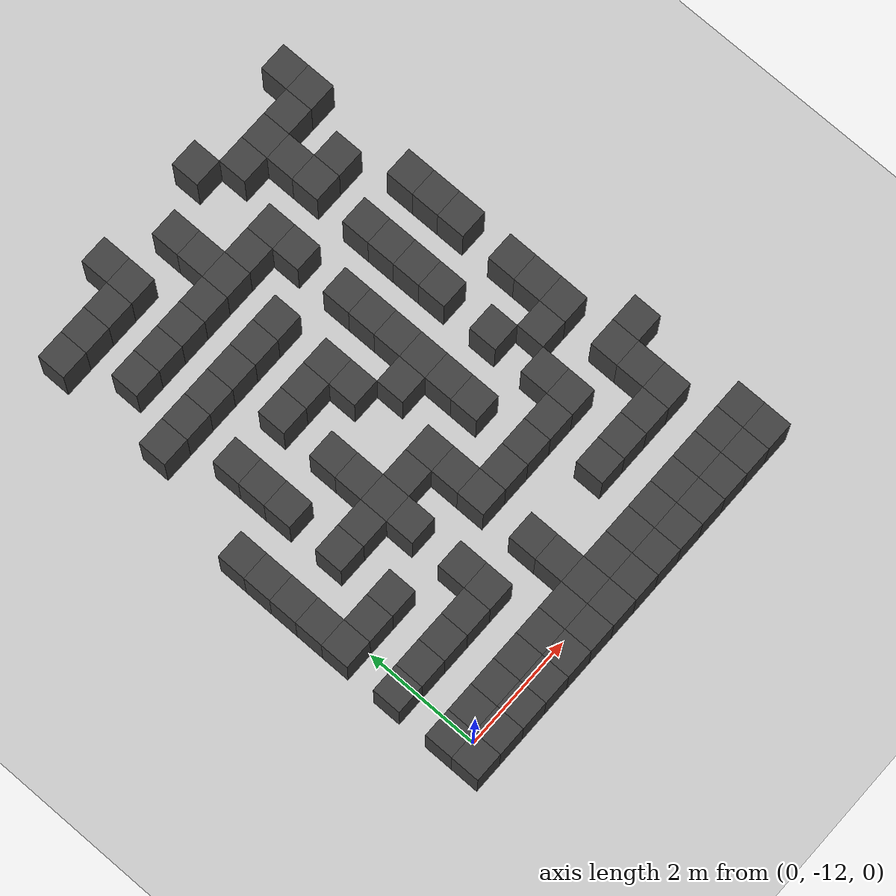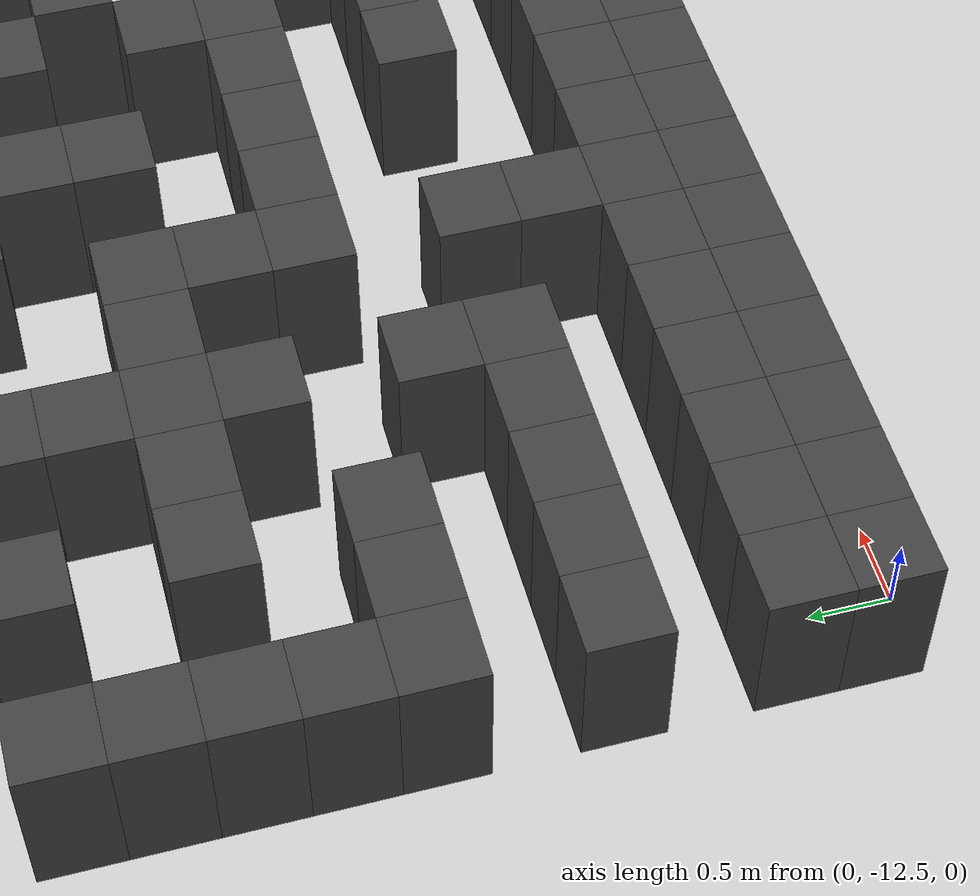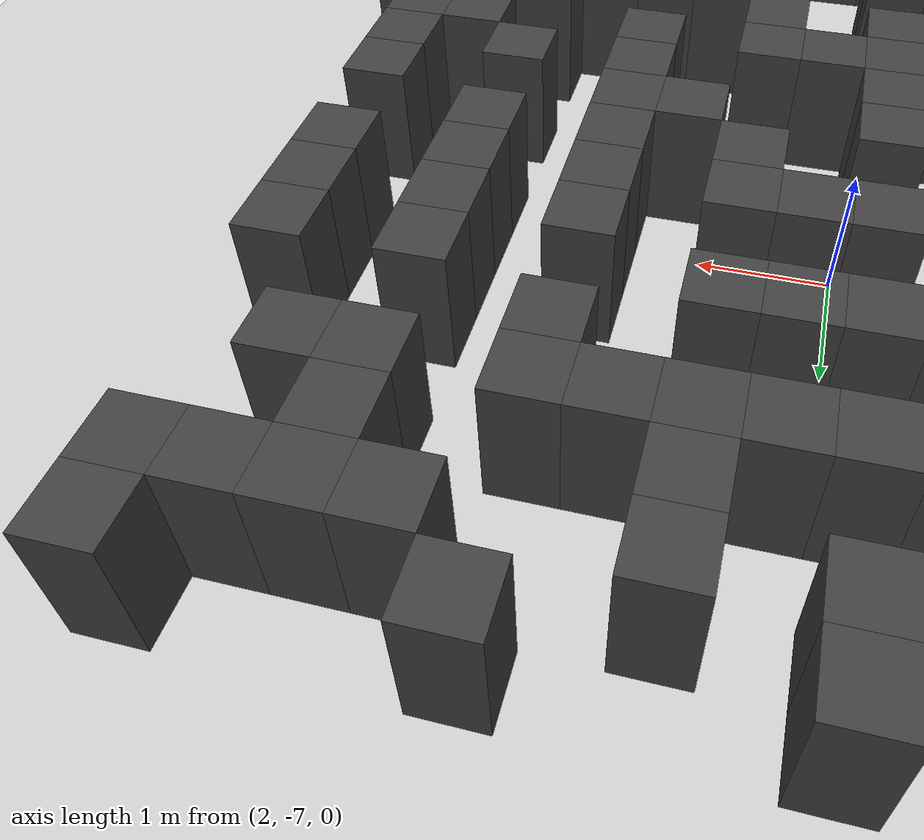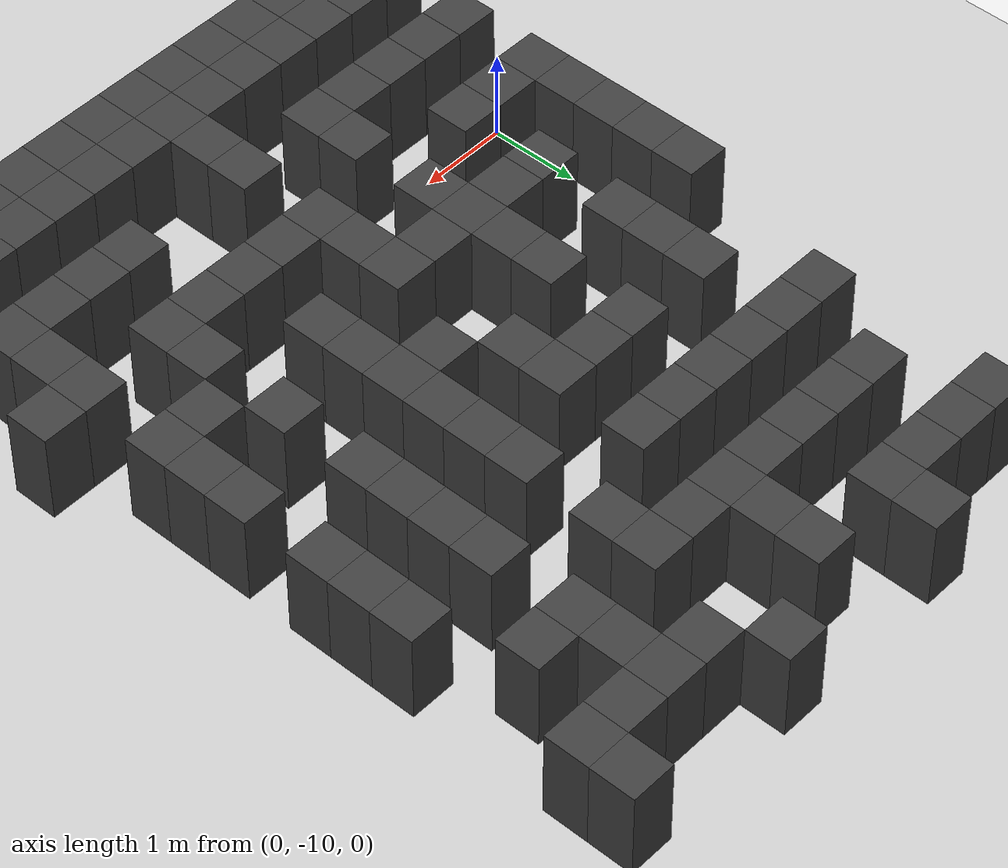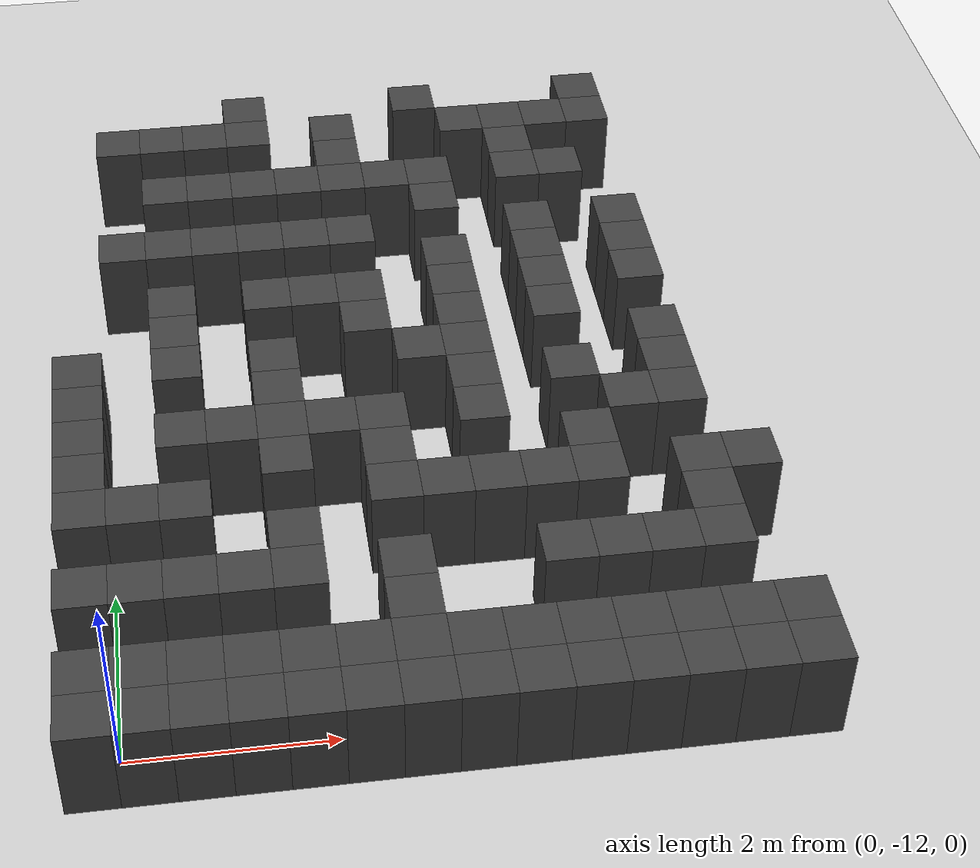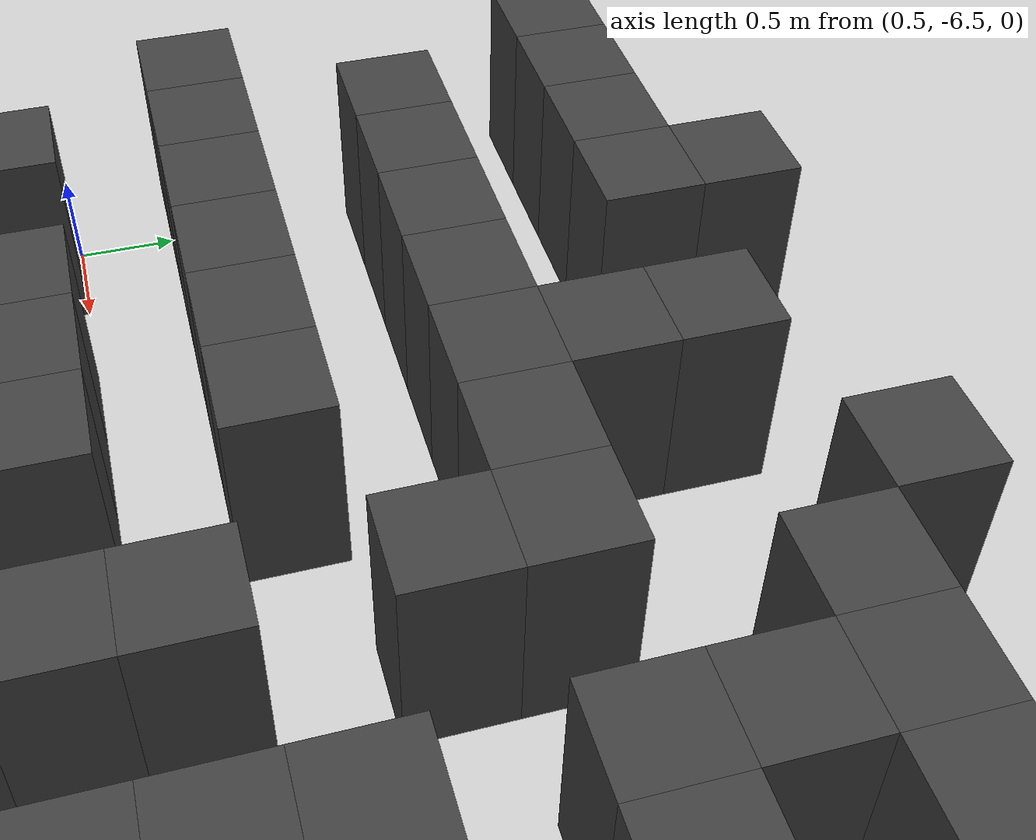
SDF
<sdf version="1.7">
 <world name="map_15497">
  <model name="ground_plane">
   <static>true</static>
   <link name="link">
    <collision name="collision">
     <geometry><plane><normal>0 0 1</normal><size>200 200</size></plane></geometry>
    </collision>
    <visual name="visual">
     <geometry><plane><normal>0 0 1</normal><size>200 200</size></plane></geometry>
     <material><ambient>0.8 0.8 0.8 1</ambient><diffuse>0.8 0.8 0.8 1</diffuse></material>
    </visual>
   </link>
  </model>
  <model name="maze_environment">
   <static>true</static>
   <link name="wall_742">
    <pose>1.750 -3.250 0.500 0 0 0</pose>
    <collision name="col"><geometry><box><size>0.5 0.5 1.0</size></box></geometry></collision>
    <visual name="vis">
     <geometry><box><size>0.5 0.5 1.0</size></box></geometry>
     <material><ambient>0.15 0.15 0.15 1</ambient><diffuse>0.25 0.25 0.25 1</diffuse></material>
    </visual>
   </link>
   <link name="wall_743">
    <pose>3.750 -3.250 0.500 0 0 0</pose>
    <collision name="col"><geometry><box><size>0.5 0.5 1.0</size></box></geometry></collision>
    <visual name="vis">
     <geometry><box><size>0.5 0.5 1.0</size></box></geometry>
     <material><ambient>0.15 0.15 0.15 1</ambient><diffuse>0.25 0.25 0.25 1</diffuse></material>
    </visual>
   </link>
   <link name="wall_744">
    <pose>5.750 -3.250 0.500 0 0 0</pose>
    <collision name="col"><geometry><box><size>0.5 0.5 1.0</size></box></geometry></collision>
    <visual name="vis">
     <geometry><box><size>0.5 0.5 1.0</size></box></geometry>
     <material><ambient>0.15 0.15 0.15 1</ambient><diffuse>0.25 0.25 0.25 1</diffuse></material>
    </visual>
   </link>
   <link name="wall_765">
    <pose>0.250 -3.750 0.500 0 0 0</pose>
    <collision name="col"><geometry><box><size>0.5 0.5 1.0</size></box></geometry></collision>
    <visual name="vis">
     <geometry><box><size>0.5 0.5 1.0</size></box></geometry>
     <material><ambient>0.15 0.15 0.15 1</ambient><diffuse>0.25 0.25 0.25 1</diffuse></material>
    </visual>
   </link>
   <link name="wall_766">
    <pose>0.750 -3.750 0.500 0 0 0</pose>
    <collision name="col"><geometry><box><size>0.5 0.5 1.0</size></box></geometry></collision>
    <visual name="vis">
     <geometry><box><size>0.5 0.5 1.0</size></box></geometry>
     <material><ambient>0.15 0.15 0.15 1</ambient><diffuse>0.25 0.25 0.25 1</diffuse></material>
    </visual>
   </link>
   <link name="wall_767">
    <pose>1.250 -3.750 0.500 0 0 0</pose>
    <collision name="col"><geometry><box><size>0.5 0.5 1.0</size></box></geometry></collision>
    <visual name="vis">
     <geometry><box><size>0.5 0.5 1.0</size></box></geometry>
     <material><ambient>0.15 0.15 0.15 1</ambient><diffuse>0.25 0.25 0.25 1</diffuse></material>
    </visual>
   </link>
   <link name="wall_768">
    <pose>1.750 -3.750 0.500 0 0 0</pose>
    <collision name="col"><geometry><box><size>0.5 0.5 1.0</size></box></geometry></collision>
    <visual name="vis">
     <geometry><box><size>0.5 0.5 1.0</size></box></geometry>
     <material><ambient>0.15 0.15 0.15 1</ambient><diffuse>0.25 0.25 0.25 1</diffuse></material>
    </visual>
   </link>
   <link name="wall_769">
    <pose>2.750 -3.750 0.500 0 0 0</pose>
    <collision name="col"><geometry><box><size>0.5 0.5 1.0</size></box></geometry></collision>
    <visual name="vis">
     <geometry><box><size>0.5 0.5 1.0</size></box></geometry>
     <material><ambient>0.15 0.15 0.15 1</ambient><diffuse>0.25 0.25 0.25 1</diffuse></material>
    </visual>
   </link>
   <link name="wall_770">
    <pose>4.250 -3.750 0.500 0 0 0</pose>
    <collision name="col"><geometry><box><size>0.5 0.5 1.0</size></box></geometry></collision>
    <visual name="vis">
     <geometry><box><size>0.5 0.5 1.0</size></box></geometry>
     <material><ambient>0.15 0.15 0.15 1</ambient><diffuse>0.25 0.25 0.25 1</diffuse></material>
    </visual>
   </link>
   <link name="wall_771">
    <pose>4.750 -3.750 0.500 0 0 0</pose>
    <collision name="col"><geometry><box><size>0.5 0.5 1.0</size></box></geometry></collision>
    <visual name="vis">
     <geometry><box><size>0.5 0.5 1.0</size></box></geometry>
     <material><ambient>0.15 0.15 0.15 1</ambient><diffuse>0.25 0.25 0.25 1</diffuse></material>
    </visual>
   </link>
   <link name="wall_772">
    <pose>5.250 -3.750 0.500 0 0 0</pose>
    <collision name="col"><geometry><box><size>0.5 0.5 1.0</size></box></geometry></collision>
    <visual name="vis">
     <geometry><box><size>0.5 0.5 1.0</size></box></geometry>
     <material><ambient>0.15 0.15 0.15 1</ambient><diffuse>0.25 0.25 0.25 1</diffuse></material>
    </visual>
   </link>
   <link name="wall_773">
    <pose>5.750 -3.750 0.500 0 0 0</pose>
    <collision name="col"><geometry><box><size>0.5 0.5 1.0</size></box></geometry></collision>
    <visual name="vis">
     <geometry><box><size>0.5 0.5 1.0</size></box></geometry>
     <material><ambient>0.15 0.15 0.15 1</ambient><diffuse>0.25 0.25 0.25 1</diffuse></material>
    </visual>
   </link>
   <link name="wall_789">
    <pose>2.750 -4.250 0.500 0 0 0</pose>
    <collision name="col"><geometry><box><size>0.5 0.5 1.0</size></box></geometry></collision>
    <visual name="vis">
     <geometry><box><size>0.5 0.5 1.0</size></box></geometry>
     <material><ambient>0.15 0.15 0.15 1</ambient><diffuse>0.25 0.25 0.25 1</diffuse></material>
    </visual>
   </link>
   <link name="wall_790">
    <pose>4.750 -4.250 0.500 0 0 0</pose>
    <collision name="col"><geometry><box><size>0.5 0.5 1.0</size></box></geometry></collision>
    <visual name="vis">
     <geometry><box><size>0.5 0.5 1.0</size></box></geometry>
     <material><ambient>0.15 0.15 0.15 1</ambient><diffuse>0.25 0.25 0.25 1</diffuse></material>
    </visual>
   </link>
   <link name="wall_810">
    <pose>0.750 -4.750 0.500 0 0 0</pose>
    <collision name="col"><geometry><box><size>0.5 0.5 1.0</size></box></geometry></collision>
    <visual name="vis">
     <geometry><box><size>0.5 0.5 1.0</size></box></geometry>
     <material><ambient>0.15 0.15 0.15 1</ambient><diffuse>0.25 0.25 0.25 1</diffuse></material>
    </visual>
   </link>
   <link name="wall_811">
    <pose>1.250 -4.750 0.500 0 0 0</pose>
    <collision name="col"><geometry><box><size>0.5 0.5 1.0</size></box></geometry></collision>
    <visual name="vis">
     <geometry><box><size>0.5 0.5 1.0</size></box></geometry>
     <material><ambient>0.15 0.15 0.15 1</ambient><diffuse>0.25 0.25 0.25 1</diffuse></material>
    </visual>
   </link>
   <link name="wall_812">
    <pose>1.750 -4.750 0.500 0 0 0</pose>
    <collision name="col"><geometry><box><size>0.5 0.5 1.0</size></box></geometry></collision>
    <visual name="vis">
     <geometry><box><size>0.5 0.5 1.0</size></box></geometry>
     <material><ambient>0.15 0.15 0.15 1</ambient><diffuse>0.25 0.25 0.25 1</diffuse></material>
    </visual>
   </link>
   <link name="wall_813">
    <pose>2.250 -4.750 0.500 0 0 0</pose>
    <collision name="col"><geometry><box><size>0.5 0.5 1.0</size></box></geometry></collision>
    <visual name="vis">
     <geometry><box><size>0.5 0.5 1.0</size></box></geometry>
     <material><ambient>0.15 0.15 0.15 1</ambient><diffuse>0.25 0.25 0.25 1</diffuse></material>
    </visual>
   </link>
   <link name="wall_814">
    <pose>2.750 -4.750 0.500 0 0 0</pose>
    <collision name="col"><geometry><box><size>0.5 0.5 1.0</size></box></geometry></collision>
    <visual name="vis">
     <geometry><box><size>0.5 0.5 1.0</size></box></geometry>
     <material><ambient>0.15 0.15 0.15 1</ambient><diffuse>0.25 0.25 0.25 1</diffuse></material>
    </visual>
   </link>
   <link name="wall_815">
    <pose>3.250 -4.750 0.500 0 0 0</pose>
    <collision name="col"><geometry><box><size>0.5 0.5 1.0</size></box></geometry></collision>
    <visual name="vis">
     <geometry><box><size>0.5 0.5 1.0</size></box></geometry>
     <material><ambient>0.15 0.15 0.15 1</ambient><diffuse>0.25 0.25 0.25 1</diffuse></material>
    </visual>
   </link>
   <link name="wall_816">
    <pose>3.750 -4.750 0.500 0 0 0</pose>
    <collision name="col"><geometry><box><size>0.5 0.5 1.0</size></box></geometry></collision>
    <visual name="vis">
     <geometry><box><size>0.5 0.5 1.0</size></box></geometry>
     <material><ambient>0.15 0.15 0.15 1</ambient><diffuse>0.25 0.25 0.25 1</diffuse></material>
    </visual>
   </link>
   <link name="wall_817">
    <pose>4.750 -4.750 0.500 0 0 0</pose>
    <collision name="col"><geometry><box><size>0.5 0.5 1.0</size></box></geometry></collision>
    <visual name="vis">
     <geometry><box><size>0.5 0.5 1.0</size></box></geometry>
     <material><ambient>0.15 0.15 0.15 1</ambient><diffuse>0.25 0.25 0.25 1</diffuse></material>
    </visual>
   </link>
   <link name="wall_818">
    <pose>5.250 -4.750 0.500 0 0 0</pose>
    <collision name="col"><geometry><box><size>0.5 0.5 1.0</size></box></geometry></collision>
    <visual name="vis">
     <geometry><box><size>0.5 0.5 1.0</size></box></geometry>
     <material><ambient>0.15 0.15 0.15 1</ambient><diffuse>0.25 0.25 0.25 1</diffuse></material>
    </visual>
   </link>
   <link name="wall_833">
    <pose>3.750 -5.250 0.500 0 0 0</pose>
    <collision name="col"><geometry><box><size>0.5 0.5 1.0</size></box></geometry></collision>
    <visual name="vis">
     <geometry><box><size>0.5 0.5 1.0</size></box></geometry>
     <material><ambient>0.15 0.15 0.15 1</ambient><diffuse>0.25 0.25 0.25 1</diffuse></material>
    </visual>
   </link>
   <link name="wall_854">
    <pose>0.250 -5.750 0.500 0 0 0</pose>
    <collision name="col"><geometry><box><size>0.5 0.5 1.0</size></box></geometry></collision>
    <visual name="vis">
     <geometry><box><size>0.5 0.5 1.0</size></box></geometry>
     <material><ambient>0.15 0.15 0.15 1</ambient><diffuse>0.25 0.25 0.25 1</diffuse></material>
    </visual>
   </link>
   <link name="wall_855">
    <pose>0.750 -5.750 0.500 0 0 0</pose>
    <collision name="col"><geometry><box><size>0.5 0.5 1.0</size></box></geometry></collision>
    <visual name="vis">
     <geometry><box><size>0.5 0.5 1.0</size></box></geometry>
     <material><ambient>0.15 0.15 0.15 1</ambient><diffuse>0.25 0.25 0.25 1</diffuse></material>
    </visual>
   </link>
   <link name="wall_856">
    <pose>1.250 -5.750 0.500 0 0 0</pose>
    <collision name="col"><geometry><box><size>0.5 0.5 1.0</size></box></geometry></collision>
    <visual name="vis">
     <geometry><box><size>0.5 0.5 1.0</size></box></geometry>
     <material><ambient>0.15 0.15 0.15 1</ambient><diffuse>0.25 0.25 0.25 1</diffuse></material>
    </visual>
   </link>
   <link name="wall_857">
    <pose>1.750 -5.750 0.500 0 0 0</pose>
    <collision name="col"><geometry><box><size>0.5 0.5 1.0</size></box></geometry></collision>
    <visual name="vis">
     <geometry><box><size>0.5 0.5 1.0</size></box></geometry>
     <material><ambient>0.15 0.15 0.15 1</ambient><diffuse>0.25 0.25 0.25 1</diffuse></material>
    </visual>
   </link>
   <link name="wall_858">
    <pose>2.250 -5.750 0.500 0 0 0</pose>
    <collision name="col"><geometry><box><size>0.5 0.5 1.0</size></box></geometry></collision>
    <visual name="vis">
     <geometry><box><size>0.5 0.5 1.0</size></box></geometry>
     <material><ambient>0.15 0.15 0.15 1</ambient><diffuse>0.25 0.25 0.25 1</diffuse></material>
    </visual>
   </link>
   <link name="wall_859">
    <pose>2.750 -5.750 0.500 0 0 0</pose>
    <collision name="col"><geometry><box><size>0.5 0.5 1.0</size></box></geometry></collision>
    <visual name="vis">
     <geometry><box><size>0.5 0.5 1.0</size></box></geometry>
     <material><ambient>0.15 0.15 0.15 1</ambient><diffuse>0.25 0.25 0.25 1</diffuse></material>
    </visual>
   </link>
   <link name="wall_860">
    <pose>4.750 -5.750 0.500 0 0 0</pose>
    <collision name="col"><geometry><box><size>0.5 0.5 1.0</size></box></geometry></collision>
    <visual name="vis">
     <geometry><box><size>0.5 0.5 1.0</size></box></geometry>
     <material><ambient>0.15 0.15 0.15 1</ambient><diffuse>0.25 0.25 0.25 1</diffuse></material>
    </visual>
   </link>
   <link name="wall_861">
    <pose>5.750 -5.750 0.500 0 0 0</pose>
    <collision name="col"><geometry><box><size>0.5 0.5 1.0</size></box></geometry></collision>
    <visual name="vis">
     <geometry><box><size>0.5 0.5 1.0</size></box></geometry>
     <material><ambient>0.15 0.15 0.15 1</ambient><diffuse>0.25 0.25 0.25 1</diffuse></material>
    </visual>
   </link>
   <link name="wall_877">
    <pose>3.750 -6.250 0.500 0 0 0</pose>
    <collision name="col"><geometry><box><size>0.5 0.5 1.0</size></box></geometry></collision>
    <visual name="vis">
     <geometry><box><size>0.5 0.5 1.0</size></box></geometry>
     <material><ambient>0.15 0.15 0.15 1</ambient><diffuse>0.25 0.25 0.25 1</diffuse></material>
    </visual>
   </link>
   <link name="wall_878">
    <pose>4.750 -6.250 0.500 0 0 0</pose>
    <collision name="col"><geometry><box><size>0.5 0.5 1.0</size></box></geometry></collision>
    <visual name="vis">
     <geometry><box><size>0.5 0.5 1.0</size></box></geometry>
     <material><ambient>0.15 0.15 0.15 1</ambient><diffuse>0.25 0.25 0.25 1</diffuse></material>
    </visual>
   </link>
   <link name="wall_879">
    <pose>5.750 -6.250 0.500 0 0 0</pose>
    <collision name="col"><geometry><box><size>0.5 0.5 1.0</size></box></geometry></collision>
    <visual name="vis">
     <geometry><box><size>0.5 0.5 1.0</size></box></geometry>
     <material><ambient>0.15 0.15 0.15 1</ambient><diffuse>0.25 0.25 0.25 1</diffuse></material>
    </visual>
   </link>
   <link name="wall_900">
    <pose>0.750 -6.750 0.500 0 0 0</pose>
    <collision name="col"><geometry><box><size>0.5 0.5 1.0</size></box></geometry></collision>
    <visual name="vis">
     <geometry><box><size>0.5 0.5 1.0</size></box></geometry>
     <material><ambient>0.15 0.15 0.15 1</ambient><diffuse>0.25 0.25 0.25 1</diffuse></material>
    </visual>
   </link>
   <link name="wall_901">
    <pose>1.750 -6.750 0.500 0 0 0</pose>
    <collision name="col"><geometry><box><size>0.5 0.5 1.0</size></box></geometry></collision>
    <visual name="vis">
     <geometry><box><size>0.5 0.5 1.0</size></box></geometry>
     <material><ambient>0.15 0.15 0.15 1</ambient><diffuse>0.25 0.25 0.25 1</diffuse></material>
    </visual>
   </link>
   <link name="wall_902">
    <pose>2.250 -6.750 0.500 0 0 0</pose>
    <collision name="col"><geometry><box><size>0.5 0.5 1.0</size></box></geometry></collision>
    <visual name="vis">
     <geometry><box><size>0.5 0.5 1.0</size></box></geometry>
     <material><ambient>0.15 0.15 0.15 1</ambient><diffuse>0.25 0.25 0.25 1</diffuse></material>
    </visual>
   </link>
   <link name="wall_903">
    <pose>2.750 -6.750 0.500 0 0 0</pose>
    <collision name="col"><geometry><box><size>0.5 0.5 1.0</size></box></geometry></collision>
    <visual name="vis">
     <geometry><box><size>0.5 0.5 1.0</size></box></geometry>
     <material><ambient>0.15 0.15 0.15 1</ambient><diffuse>0.25 0.25 0.25 1</diffuse></material>
    </visual>
   </link>
   <link name="wall_904">
    <pose>3.750 -6.750 0.500 0 0 0</pose>
    <collision name="col"><geometry><box><size>0.5 0.5 1.0</size></box></geometry></collision>
    <visual name="vis">
     <geometry><box><size>0.5 0.5 1.0</size></box></geometry>
     <material><ambient>0.15 0.15 0.15 1</ambient><diffuse>0.25 0.25 0.25 1</diffuse></material>
    </visual>
   </link>
   <link name="wall_905">
    <pose>4.750 -6.750 0.500 0 0 0</pose>
    <collision name="col"><geometry><box><size>0.5 0.5 1.0</size></box></geometry></collision>
    <visual name="vis">
     <geometry><box><size>0.5 0.5 1.0</size></box></geometry>
     <material><ambient>0.15 0.15 0.15 1</ambient><diffuse>0.25 0.25 0.25 1</diffuse></material>
    </visual>
   </link>
   <link name="wall_906">
    <pose>5.750 -6.750 0.500 0 0 0</pose>
    <collision name="col"><geometry><box><size>0.5 0.5 1.0</size></box></geometry></collision>
    <visual name="vis">
     <geometry><box><size>0.5 0.5 1.0</size></box></geometry>
     <material><ambient>0.15 0.15 0.15 1</ambient><diffuse>0.25 0.25 0.25 1</diffuse></material>
    </visual>
   </link>
   <link name="wall_922">
    <pose>0.750 -7.250 0.500 0 0 0</pose>
    <collision name="col"><geometry><box><size>0.5 0.5 1.0</size></box></geometry></collision>
    <visual name="vis">
     <geometry><box><size>0.5 0.5 1.0</size></box></geometry>
     <material><ambient>0.15 0.15 0.15 1</ambient><diffuse>0.25 0.25 0.25 1</diffuse></material>
    </visual>
   </link>
   <link name="wall_923">
    <pose>2.750 -7.250 0.500 0 0 0</pose>
    <collision name="col"><geometry><box><size>0.5 0.5 1.0</size></box></geometry></collision>
    <visual name="vis">
     <geometry><box><size>0.5 0.5 1.0</size></box></geometry>
     <material><ambient>0.15 0.15 0.15 1</ambient><diffuse>0.25 0.25 0.25 1</diffuse></material>
    </visual>
   </link>
   <link name="wall_924">
    <pose>3.750 -7.250 0.500 0 0 0</pose>
    <collision name="col"><geometry><box><size>0.5 0.5 1.0</size></box></geometry></collision>
    <visual name="vis">
     <geometry><box><size>0.5 0.5 1.0</size></box></geometry>
     <material><ambient>0.15 0.15 0.15 1</ambient><diffuse>0.25 0.25 0.25 1</diffuse></material>
    </visual>
   </link>
   <link name="wall_925">
    <pose>4.750 -7.250 0.500 0 0 0</pose>
    <collision name="col"><geometry><box><size>0.5 0.5 1.0</size></box></geometry></collision>
    <visual name="vis">
     <geometry><box><size>0.5 0.5 1.0</size></box></geometry>
     <material><ambient>0.15 0.15 0.15 1</ambient><diffuse>0.25 0.25 0.25 1</diffuse></material>
    </visual>
   </link>
   <link name="wall_948">
    <pose>-0.250 -7.750 0.500 0 0 0</pose>
    <collision name="col"><geometry><box><size>0.5 0.5 1.0</size></box></geometry></collision>
    <visual name="vis">
     <geometry><box><size>0.5 0.5 1.0</size></box></geometry>
     <material><ambient>0.15 0.15 0.15 1</ambient><diffuse>0.25 0.25 0.25 1</diffuse></material>
    </visual>
   </link>
   <link name="wall_949">
    <pose>0.750 -7.750 0.500 0 0 0</pose>
    <collision name="col"><geometry><box><size>0.5 0.5 1.0</size></box></geometry></collision>
    <visual name="vis">
     <geometry><box><size>0.5 0.5 1.0</size></box></geometry>
     <material><ambient>0.15 0.15 0.15 1</ambient><diffuse>0.25 0.25 0.25 1</diffuse></material>
    </visual>
   </link>
   <link name="wall_950">
    <pose>1.750 -7.750 0.500 0 0 0</pose>
    <collision name="col"><geometry><box><size>0.5 0.5 1.0</size></box></geometry></collision>
    <visual name="vis">
     <geometry><box><size>0.5 0.5 1.0</size></box></geometry>
     <material><ambient>0.15 0.15 0.15 1</ambient><diffuse>0.25 0.25 0.25 1</diffuse></material>
    </visual>
   </link>
   <link name="wall_951">
    <pose>3.250 -7.750 0.500 0 0 0</pose>
    <collision name="col"><geometry><box><size>0.5 0.5 1.0</size></box></geometry></collision>
    <visual name="vis">
     <geometry><box><size>0.5 0.5 1.0</size></box></geometry>
     <material><ambient>0.15 0.15 0.15 1</ambient><diffuse>0.25 0.25 0.25 1</diffuse></material>
    </visual>
   </link>
   <link name="wall_952">
    <pose>3.750 -7.750 0.500 0 0 0</pose>
    <collision name="col"><geometry><box><size>0.5 0.5 1.0</size></box></geometry></collision>
    <visual name="vis">
     <geometry><box><size>0.5 0.5 1.0</size></box></geometry>
     <material><ambient>0.15 0.15 0.15 1</ambient><diffuse>0.25 0.25 0.25 1</diffuse></material>
    </visual>
   </link>
   <link name="wall_953">
    <pose>5.750 -7.750 0.500 0 0 0</pose>
    <collision name="col"><geometry><box><size>0.5 0.5 1.0</size></box></geometry></collision>
    <visual name="vis">
     <geometry><box><size>0.5 0.5 1.0</size></box></geometry>
     <material><ambient>0.15 0.15 0.15 1</ambient><diffuse>0.25 0.25 0.25 1</diffuse></material>
    </visual>
   </link>
   <link name="wall_969">
    <pose>-0.250 -8.250 0.500 0 0 0</pose>
    <collision name="col"><geometry><box><size>0.5 0.5 1.0</size></box></geometry></collision>
    <visual name="vis">
     <geometry><box><size>0.5 0.5 1.0</size></box></geometry>
     <material><ambient>0.15 0.15 0.15 1</ambient><diffuse>0.25 0.25 0.25 1</diffuse></material>
    </visual>
   </link>
   <link name="wall_970">
    <pose>1.750 -8.250 0.500 0 0 0</pose>
    <collision name="col"><geometry><box><size>0.5 0.5 1.0</size></box></geometry></collision>
    <visual name="vis">
     <geometry><box><size>0.5 0.5 1.0</size></box></geometry>
     <material><ambient>0.15 0.15 0.15 1</ambient><diffuse>0.25 0.25 0.25 1</diffuse></material>
    </visual>
   </link>
   <link name="wall_971">
    <pose>3.750 -8.250 0.500 0 0 0</pose>
    <collision name="col"><geometry><box><size>0.5 0.5 1.0</size></box></geometry></collision>
    <visual name="vis">
     <geometry><box><size>0.5 0.5 1.0</size></box></geometry>
     <material><ambient>0.15 0.15 0.15 1</ambient><diffuse>0.25 0.25 0.25 1</diffuse></material>
    </visual>
   </link>
   <link name="wall_972">
    <pose>4.750 -8.250 0.500 0 0 0</pose>
    <collision name="col"><geometry><box><size>0.5 0.5 1.0</size></box></geometry></collision>
    <visual name="vis">
     <geometry><box><size>0.5 0.5 1.0</size></box></geometry>
     <material><ambient>0.15 0.15 0.15 1</ambient><diffuse>0.25 0.25 0.25 1</diffuse></material>
    </visual>
   </link>
   <link name="wall_973">
    <pose>5.750 -8.250 0.500 0 0 0</pose>
    <collision name="col"><geometry><box><size>0.5 0.5 1.0</size></box></geometry></collision>
    <visual name="vis">
     <geometry><box><size>0.5 0.5 1.0</size></box></geometry>
     <material><ambient>0.15 0.15 0.15 1</ambient><diffuse>0.25 0.25 0.25 1</diffuse></material>
    </visual>
   </link>
   <link name="wall_994">
    <pose>-0.250 -8.750 0.500 0 0 0</pose>
    <collision name="col"><geometry><box><size>0.5 0.5 1.0</size></box></geometry></collision>
    <visual name="vis">
     <geometry><box><size>0.5 0.5 1.0</size></box></geometry>
     <material><ambient>0.15 0.15 0.15 1</ambient><diffuse>0.25 0.25 0.25 1</diffuse></material>
    </visual>
   </link>
   <link name="wall_995">
    <pose>0.750 -8.750 0.500 0 0 0</pose>
    <collision name="col"><geometry><box><size>0.5 0.5 1.0</size></box></geometry></collision>
    <visual name="vis">
     <geometry><box><size>0.5 0.5 1.0</size></box></geometry>
     <material><ambient>0.15 0.15 0.15 1</ambient><diffuse>0.25 0.25 0.25 1</diffuse></material>
    </visual>
   </link>
   <link name="wall_996">
    <pose>1.250 -8.750 0.500 0 0 0</pose>
    <collision name="col"><geometry><box><size>0.5 0.5 1.0</size></box></geometry></collision>
    <visual name="vis">
     <geometry><box><size>0.5 0.5 1.0</size></box></geometry>
     <material><ambient>0.15 0.15 0.15 1</ambient><diffuse>0.25 0.25 0.25 1</diffuse></material>
    </visual>
   </link>
   <link name="wall_997">
    <pose>1.750 -8.750 0.500 0 0 0</pose>
    <collision name="col"><geometry><box><size>0.5 0.5 1.0</size></box></geometry></collision>
    <visual name="vis">
     <geometry><box><size>0.5 0.5 1.0</size></box></geometry>
     <material><ambient>0.15 0.15 0.15 1</ambient><diffuse>0.25 0.25 0.25 1</diffuse></material>
    </visual>
   </link>
   <link name="wall_998">
    <pose>2.250 -8.750 0.500 0 0 0</pose>
    <collision name="col"><geometry><box><size>0.5 0.5 1.0</size></box></geometry></collision>
    <visual name="vis">
     <geometry><box><size>0.5 0.5 1.0</size></box></geometry>
     <material><ambient>0.15 0.15 0.15 1</ambient><diffuse>0.25 0.25 0.25 1</diffuse></material>
    </visual>
   </link>
   <link name="wall_999">
    <pose>2.750 -8.750 0.500 0 0 0</pose>
    <collision name="col"><geometry><box><size>0.5 0.5 1.0</size></box></geometry></collision>
    <visual name="vis">
     <geometry><box><size>0.5 0.5 1.0</size></box></geometry>
     <material><ambient>0.15 0.15 0.15 1</ambient><diffuse>0.25 0.25 0.25 1</diffuse></material>
    </visual>
   </link>
   <link name="wall_1000">
    <pose>3.750 -8.750 0.500 0 0 0</pose>
    <collision name="col"><geometry><box><size>0.5 0.5 1.0</size></box></geometry></collision>
    <visual name="vis">
     <geometry><box><size>0.5 0.5 1.0</size></box></geometry>
     <material><ambient>0.15 0.15 0.15 1</ambient><diffuse>0.25 0.25 0.25 1</diffuse></material>
    </visual>
   </link>
   <link name="wall_1001">
    <pose>5.250 -8.750 0.500 0 0 0</pose>
    <collision name="col"><geometry><box><size>0.5 0.5 1.0</size></box></geometry></collision>
    <visual name="vis">
     <geometry><box><size>0.5 0.5 1.0</size></box></geometry>
     <material><ambient>0.15 0.15 0.15 1</ambient><diffuse>0.25 0.25 0.25 1</diffuse></material>
    </visual>
   </link>
   <link name="wall_1002">
    <pose>5.750 -8.750 0.500 0 0 0</pose>
    <collision name="col"><geometry><box><size>0.5 0.5 1.0</size></box></geometry></collision>
    <visual name="vis">
     <geometry><box><size>0.5 0.5 1.0</size></box></geometry>
     <material><ambient>0.15 0.15 0.15 1</ambient><diffuse>0.25 0.25 0.25 1</diffuse></material>
    </visual>
   </link>
   <link name="wall_1015">
    <pose>-0.250 -9.250 0.500 0 0 0</pose>
    <collision name="col"><geometry><box><size>0.5 0.5 1.0</size></box></geometry></collision>
    <visual name="vis">
     <geometry><box><size>0.5 0.5 1.0</size></box></geometry>
     <material><ambient>0.15 0.15 0.15 1</ambient><diffuse>0.25 0.25 0.25 1</diffuse></material>
    </visual>
   </link>
   <link name="wall_1016">
    <pose>1.750 -9.250 0.500 0 0 0</pose>
    <collision name="col"><geometry><box><size>0.5 0.5 1.0</size></box></geometry></collision>
    <visual name="vis">
     <geometry><box><size>0.5 0.5 1.0</size></box></geometry>
     <material><ambient>0.15 0.15 0.15 1</ambient><diffuse>0.25 0.25 0.25 1</diffuse></material>
    </visual>
   </link>
   <link name="wall_1017">
    <pose>2.750 -9.250 0.500 0 0 0</pose>
    <collision name="col"><geometry><box><size>0.5 0.5 1.0</size></box></geometry></collision>
    <visual name="vis">
     <geometry><box><size>0.5 0.5 1.0</size></box></geometry>
     <material><ambient>0.15 0.15 0.15 1</ambient><diffuse>0.25 0.25 0.25 1</diffuse></material>
    </visual>
   </link>
   <link name="wall_1018">
    <pose>4.750 -9.250 0.500 0 0 0</pose>
    <collision name="col"><geometry><box><size>0.5 0.5 1.0</size></box></geometry></collision>
    <visual name="vis">
     <geometry><box><size>0.5 0.5 1.0</size></box></geometry>
     <material><ambient>0.15 0.15 0.15 1</ambient><diffuse>0.25 0.25 0.25 1</diffuse></material>
    </visual>
   </link>
   <link name="wall_1043">
    <pose>-0.250 -9.750 0.500 0 0 0</pose>
    <collision name="col"><geometry><box><size>0.5 0.5 1.0</size></box></geometry></collision>
    <visual name="vis">
     <geometry><box><size>0.5 0.5 1.0</size></box></geometry>
     <material><ambient>0.15 0.15 0.15 1</ambient><diffuse>0.25 0.25 0.25 1</diffuse></material>
    </visual>
   </link>
   <link name="wall_1044">
    <pose>0.250 -9.750 0.500 0 0 0</pose>
    <collision name="col"><geometry><box><size>0.5 0.5 1.0</size></box></geometry></collision>
    <visual name="vis">
     <geometry><box><size>0.5 0.5 1.0</size></box></geometry>
     <material><ambient>0.15 0.15 0.15 1</ambient><diffuse>0.25 0.25 0.25 1</diffuse></material>
    </visual>
   </link>
   <link name="wall_1045">
    <pose>0.750 -9.750 0.500 0 0 0</pose>
    <collision name="col"><geometry><box><size>0.5 0.5 1.0</size></box></geometry></collision>
    <visual name="vis">
     <geometry><box><size>0.5 0.5 1.0</size></box></geometry>
     <material><ambient>0.15 0.15 0.15 1</ambient><diffuse>0.25 0.25 0.25 1</diffuse></material>
    </visual>
   </link>
   <link name="wall_1046">
    <pose>2.750 -9.750 0.500 0 0 0</pose>
    <collision name="col"><geometry><box><size>0.5 0.5 1.0</size></box></geometry></collision>
    <visual name="vis">
     <geometry><box><size>0.5 0.5 1.0</size></box></geometry>
     <material><ambient>0.15 0.15 0.15 1</ambient><diffuse>0.25 0.25 0.25 1</diffuse></material>
    </visual>
   </link>
   <link name="wall_1047">
    <pose>3.250 -9.750 0.500 0 0 0</pose>
    <collision name="col"><geometry><box><size>0.5 0.5 1.0</size></box></geometry></collision>
    <visual name="vis">
     <geometry><box><size>0.5 0.5 1.0</size></box></geometry>
     <material><ambient>0.15 0.15 0.15 1</ambient><diffuse>0.25 0.25 0.25 1</diffuse></material>
    </visual>
   </link>
   <link name="wall_1048">
    <pose>3.750 -9.750 0.500 0 0 0</pose>
    <collision name="col"><geometry><box><size>0.5 0.5 1.0</size></box></geometry></collision>
    <visual name="vis">
     <geometry><box><size>0.5 0.5 1.0</size></box></geometry>
     <material><ambient>0.15 0.15 0.15 1</ambient><diffuse>0.25 0.25 0.25 1</diffuse></material>
    </visual>
   </link>
   <link name="wall_1049">
    <pose>4.250 -9.750 0.500 0 0 0</pose>
    <collision name="col"><geometry><box><size>0.5 0.5 1.0</size></box></geometry></collision>
    <visual name="vis">
     <geometry><box><size>0.5 0.5 1.0</size></box></geometry>
     <material><ambient>0.15 0.15 0.15 1</ambient><diffuse>0.25 0.25 0.25 1</diffuse></material>
    </visual>
   </link>
   <link name="wall_1050">
    <pose>4.750 -9.750 0.500 0 0 0</pose>
    <collision name="col"><geometry><box><size>0.5 0.5 1.0</size></box></geometry></collision>
    <visual name="vis">
     <geometry><box><size>0.5 0.5 1.0</size></box></geometry>
     <material><ambient>0.15 0.15 0.15 1</ambient><diffuse>0.25 0.25 0.25 1</diffuse></material>
    </visual>
   </link>
   <link name="wall_1051">
    <pose>5.750 -9.750 0.500 0 0 0</pose>
    <collision name="col"><geometry><box><size>0.5 0.5 1.0</size></box></geometry></collision>
    <visual name="vis">
     <geometry><box><size>0.5 0.5 1.0</size></box></geometry>
     <material><ambient>0.15 0.15 0.15 1</ambient><diffuse>0.25 0.25 0.25 1</diffuse></material>
    </visual>
   </link>
   <link name="wall_1052">
    <pose>6.250 -9.750 0.500 0 0 0</pose>
    <collision name="col"><geometry><box><size>0.5 0.5 1.0</size></box></geometry></collision>
    <visual name="vis">
     <geometry><box><size>0.5 0.5 1.0</size></box></geometry>
     <material><ambient>0.15 0.15 0.15 1</ambient><diffuse>0.25 0.25 0.25 1</diffuse></material>
    </visual>
   </link>
   <link name="wall_1069">
    <pose>1.750 -10.250 0.500 0 0 0</pose>
    <collision name="col"><geometry><box><size>0.5 0.5 1.0</size></box></geometry></collision>
    <visual name="vis">
     <geometry><box><size>0.5 0.5 1.0</size></box></geometry>
     <material><ambient>0.15 0.15 0.15 1</ambient><diffuse>0.25 0.25 0.25 1</diffuse></material>
    </visual>
   </link>
   <link name="wall_1070">
    <pose>5.750 -10.250 0.500 0 0 0</pose>
    <collision name="col"><geometry><box><size>0.5 0.5 1.0</size></box></geometry></collision>
    <visual name="vis">
     <geometry><box><size>0.5 0.5 1.0</size></box></geometry>
     <material><ambient>0.15 0.15 0.15 1</ambient><diffuse>0.25 0.25 0.25 1</diffuse></material>
    </visual>
   </link>
   <link name="wall_1087">
    <pose>-0.250 -10.750 0.500 0 0 0</pose>
    <collision name="col"><geometry><box><size>0.5 0.5 1.0</size></box></geometry></collision>
    <visual name="vis">
     <geometry><box><size>0.5 0.5 1.0</size></box></geometry>
     <material><ambient>0.15 0.15 0.15 1</ambient><diffuse>0.25 0.25 0.25 1</diffuse></material>
    </visual>
   </link>
   <link name="wall_1088">
    <pose>0.250 -10.750 0.500 0 0 0</pose>
    <collision name="col"><geometry><box><size>0.5 0.5 1.0</size></box></geometry></collision>
    <visual name="vis">
     <geometry><box><size>0.5 0.5 1.0</size></box></geometry>
     <material><ambient>0.15 0.15 0.15 1</ambient><diffuse>0.25 0.25 0.25 1</diffuse></material>
    </visual>
   </link>
   <link name="wall_1089">
    <pose>0.750 -10.750 0.500 0 0 0</pose>
    <collision name="col"><geometry><box><size>0.5 0.5 1.0</size></box></geometry></collision>
    <visual name="vis">
     <geometry><box><size>0.5 0.5 1.0</size></box></geometry>
     <material><ambient>0.15 0.15 0.15 1</ambient><diffuse>0.25 0.25 0.25 1</diffuse></material>
    </visual>
   </link>
   <link name="wall_1090">
    <pose>1.250 -10.750 0.500 0 0 0</pose>
    <collision name="col"><geometry><box><size>0.5 0.5 1.0</size></box></geometry></collision>
    <visual name="vis">
     <geometry><box><size>0.5 0.5 1.0</size></box></geometry>
     <material><ambient>0.15 0.15 0.15 1</ambient><diffuse>0.25 0.25 0.25 1</diffuse></material>
    </visual>
   </link>
   <link name="wall_1091">
    <pose>1.750 -10.750 0.500 0 0 0</pose>
    <collision name="col"><geometry><box><size>0.5 0.5 1.0</size></box></geometry></collision>
    <visual name="vis">
     <geometry><box><size>0.5 0.5 1.0</size></box></geometry>
     <material><ambient>0.15 0.15 0.15 1</ambient><diffuse>0.25 0.25 0.25 1</diffuse></material>
    </visual>
   </link>
   <link name="wall_1092">
    <pose>2.750 -10.750 0.500 0 0 0</pose>
    <collision name="col"><geometry><box><size>0.5 0.5 1.0</size></box></geometry></collision>
    <visual name="vis">
     <geometry><box><size>0.5 0.5 1.0</size></box></geometry>
     <material><ambient>0.15 0.15 0.15 1</ambient><diffuse>0.25 0.25 0.25 1</diffuse></material>
    </visual>
   </link>
   <link name="wall_1093">
    <pose>4.250 -10.750 0.500 0 0 0</pose>
    <collision name="col"><geometry><box><size>0.5 0.5 1.0</size></box></geometry></collision>
    <visual name="vis">
     <geometry><box><size>0.5 0.5 1.0</size></box></geometry>
     <material><ambient>0.15 0.15 0.15 1</ambient><diffuse>0.25 0.25 0.25 1</diffuse></material>
    </visual>
   </link>
   <link name="wall_1094">
    <pose>4.750 -10.750 0.500 0 0 0</pose>
    <collision name="col"><geometry><box><size>0.5 0.5 1.0</size></box></geometry></collision>
    <visual name="vis">
     <geometry><box><size>0.5 0.5 1.0</size></box></geometry>
     <material><ambient>0.15 0.15 0.15 1</ambient><diffuse>0.25 0.25 0.25 1</diffuse></material>
    </visual>
   </link>
   <link name="wall_1095">
    <pose>5.250 -10.750 0.500 0 0 0</pose>
    <collision name="col"><geometry><box><size>0.5 0.5 1.0</size></box></geometry></collision>
    <visual name="vis">
     <geometry><box><size>0.5 0.5 1.0</size></box></geometry>
     <material><ambient>0.15 0.15 0.15 1</ambient><diffuse>0.25 0.25 0.25 1</diffuse></material>
    </visual>
   </link>
   <link name="wall_1096">
    <pose>5.750 -10.750 0.500 0 0 0</pose>
    <collision name="col"><geometry><box><size>0.5 0.5 1.0</size></box></geometry></collision>
    <visual name="vis">
     <geometry><box><size>0.5 0.5 1.0</size></box></geometry>
     <material><ambient>0.15 0.15 0.15 1</ambient><diffuse>0.25 0.25 0.25 1</diffuse></material>
    </visual>
   </link>
   <link name="wall_1109">
    <pose>2.750 -11.250 0.500 0 0 0</pose>
    <collision name="col"><geometry><box><size>0.5 0.5 1.0</size></box></geometry></collision>
    <visual name="vis">
     <geometry><box><size>0.5 0.5 1.0</size></box></geometry>
     <material><ambient>0.15 0.15 0.15 1</ambient><diffuse>0.25 0.25 0.25 1</diffuse></material>
    </visual>
   </link>
   <link name="wall_1136">
    <pose>-0.250 -11.750 0.500 0 0 0</pose>
    <collision name="col"><geometry><box><size>0.5 0.5 1.0</size></box></geometry></collision>
    <visual name="vis">
     <geometry><box><size>0.5 0.5 1.0</size></box></geometry>
     <material><ambient>0.15 0.15 0.15 1</ambient><diffuse>0.25 0.25 0.25 1</diffuse></material>
    </visual>
   </link>
   <link name="wall_1137">
    <pose>0.250 -11.750 0.500 0 0 0</pose>
    <collision name="col"><geometry><box><size>0.5 0.5 1.0</size></box></geometry></collision>
    <visual name="vis">
     <geometry><box><size>0.5 0.5 1.0</size></box></geometry>
     <material><ambient>0.15 0.15 0.15 1</ambient><diffuse>0.25 0.25 0.25 1</diffuse></material>
    </visual>
   </link>
   <link name="wall_1138">
    <pose>0.750 -11.750 0.500 0 0 0</pose>
    <collision name="col"><geometry><box><size>0.5 0.5 1.0</size></box></geometry></collision>
    <visual name="vis">
     <geometry><box><size>0.5 0.5 1.0</size></box></geometry>
     <material><ambient>0.15 0.15 0.15 1</ambient><diffuse>0.25 0.25 0.25 1</diffuse></material>
    </visual>
   </link>
   <link name="wall_1139">
    <pose>1.250 -11.750 0.500 0 0 0</pose>
    <collision name="col"><geometry><box><size>0.5 0.5 1.0</size></box></geometry></collision>
    <visual name="vis">
     <geometry><box><size>0.5 0.5 1.0</size></box></geometry>
     <material><ambient>0.15 0.15 0.15 1</ambient><diffuse>0.25 0.25 0.25 1</diffuse></material>
    </visual>
   </link>
   <link name="wall_1140">
    <pose>1.750 -11.750 0.500 0 0 0</pose>
    <collision name="col"><geometry><box><size>0.5 0.5 1.0</size></box></geometry></collision>
    <visual name="vis">
     <geometry><box><size>0.5 0.5 1.0</size></box></geometry>
     <material><ambient>0.15 0.15 0.15 1</ambient><diffuse>0.25 0.25 0.25 1</diffuse></material>
    </visual>
   </link>
   <link name="wall_1141">
    <pose>2.250 -11.750 0.500 0 0 0</pose>
    <collision name="col"><geometry><box><size>0.5 0.5 1.0</size></box></geometry></collision>
    <visual name="vis">
     <geometry><box><size>0.5 0.5 1.0</size></box></geometry>
     <material><ambient>0.15 0.15 0.15 1</ambient><diffuse>0.25 0.25 0.25 1</diffuse></material>
    </visual>
   </link>
   <link name="wall_1142">
    <pose>2.750 -11.750 0.500 0 0 0</pose>
    <collision name="col"><geometry><box><size>0.5 0.5 1.0</size></box></geometry></collision>
    <visual name="vis">
     <geometry><box><size>0.5 0.5 1.0</size></box></geometry>
     <material><ambient>0.15 0.15 0.15 1</ambient><diffuse>0.25 0.25 0.25 1</diffuse></material>
    </visual>
   </link>
   <link name="wall_1143">
    <pose>3.250 -11.750 0.500 0 0 0</pose>
    <collision name="col"><geometry><box><size>0.5 0.5 1.0</size></box></geometry></collision>
    <visual name="vis">
     <geometry><box><size>0.5 0.5 1.0</size></box></geometry>
     <material><ambient>0.15 0.15 0.15 1</ambient><diffuse>0.25 0.25 0.25 1</diffuse></material>
    </visual>
   </link>
   <link name="wall_1144">
    <pose>3.750 -11.750 0.500 0 0 0</pose>
    <collision name="col"><geometry><box><size>0.5 0.5 1.0</size></box></geometry></collision>
    <visual name="vis">
     <geometry><box><size>0.5 0.5 1.0</size></box></geometry>
     <material><ambient>0.15 0.15 0.15 1</ambient><diffuse>0.25 0.25 0.25 1</diffuse></material>
    </visual>
   </link>
   <link name="wall_1145">
    <pose>4.250 -11.750 0.500 0 0 0</pose>
    <collision name="col"><geometry><box><size>0.5 0.5 1.0</size></box></geometry></collision>
    <visual name="vis">
     <geometry><box><size>0.5 0.5 1.0</size></box></geometry>
     <material><ambient>0.15 0.15 0.15 1</ambient><diffuse>0.25 0.25 0.25 1</diffuse></material>
    </visual>
   </link>
   <link name="wall_1146">
    <pose>4.750 -11.750 0.500 0 0 0</pose>
    <collision name="col"><geometry><box><size>0.5 0.5 1.0</size></box></geometry></collision>
    <visual name="vis">
     <geometry><box><size>0.5 0.5 1.0</size></box></geometry>
     <material><ambient>0.15 0.15 0.15 1</ambient><diffuse>0.25 0.25 0.25 1</diffuse></material>
    </visual>
   </link>
   <link name="wall_1147">
    <pose>5.250 -11.750 0.500 0 0 0</pose>
    <collision name="col"><geometry><box><size>0.5 0.5 1.0</size></box></geometry></collision>
    <visual name="vis">
     <geometry><box><size>0.5 0.5 1.0</size></box></geometry>
     <material><ambient>0.15 0.15 0.15 1</ambient><diffuse>0.25 0.25 0.25 1</diffuse></material>
    </visual>
   </link>
   <link name="wall_1148">
    <pose>5.750 -11.750 0.500 0 0 0</pose>
    <collision name="col"><geometry><box><size>0.5 0.5 1.0</size></box></geometry></collision>
    <visual name="vis">
     <geometry><box><size>0.5 0.5 1.0</size></box></geometry>
     <material><ambient>0.15 0.15 0.15 1</ambient><diffuse>0.25 0.25 0.25 1</diffuse></material>
    </visual>
   </link>
   <link name="wall_1149">
    <pose>6.250 -11.750 0.500 0 0 0</pose>
    <collision name="col"><geometry><box><size>0.5 0.5 1.0</size></box></geometry></collision>
    <visual name="vis">
     <geometry><box><size>0.5 0.5 1.0</size></box></geometry>
     <material><ambient>0.15 0.15 0.15 1</ambient><diffuse>0.25 0.25 0.25 1</diffuse></material>
    </visual>
   </link>
   <link name="wall_1184">
    <pose>-0.250 -12.250 0.500 0 0 0</pose>
    <collision name="col"><geometry><box><size>0.5 0.5 1.0</size></box></geometry></collision>
    <visual name="vis">
     <geometry><box><size>0.5 0.5 1.0</size></box></geometry>
     <material><ambient>0.15 0.15 0.15 1</ambient><diffuse>0.25 0.25 0.25 1</diffuse></material>
    </visual>
   </link>
   <link name="wall_1185">
    <pose>0.250 -12.250 0.500 0 0 0</pose>
    <collision name="col"><geometry><box><size>0.5 0.5 1.0</size></box></geometry></collision>
    <visual name="vis">
     <geometry><box><size>0.5 0.5 1.0</size></box></geometry>
     <material><ambient>0.15 0.15 0.15 1</ambient><diffuse>0.25 0.25 0.25 1</diffuse></material>
    </visual>
   </link>
   <link name="wall_1186">
    <pose>0.750 -12.250 0.500 0 0 0</pose>
    <collision name="col"><geometry><box><size>0.5 0.5 1.0</size></box></geometry></collision>
    <visual name="vis">
     <geometry><box><size>0.5 0.5 1.0</size></box></geometry>
     <material><ambient>0.15 0.15 0.15 1</ambient><diffuse>0.25 0.25 0.25 1</diffuse></material>
    </visual>
   </link>
   <link name="wall_1187">
    <pose>1.250 -12.250 0.500 0 0 0</pose>
    <collision name="col"><geometry><box><size>0.5 0.5 1.0</size></box></geometry></collision>
    <visual name="vis">
     <geometry><box><size>0.5 0.5 1.0</size></box></geometry>
     <material><ambient>0.15 0.15 0.15 1</ambient><diffuse>0.25 0.25 0.25 1</diffuse></material>
    </visual>
   </link>
   <link name="wall_1188">
    <pose>1.750 -12.250 0.500 0 0 0</pose>
    <collision name="col"><geometry><box><size>0.5 0.5 1.0</size></box></geometry></collision>
    <visual name="vis">
     <geometry><box><size>0.5 0.5 1.0</size></box></geometry>
     <material><ambient>0.15 0.15 0.15 1</ambient><diffuse>0.25 0.25 0.25 1</diffuse></material>
    </visual>
   </link>
   <link name="wall_1189">
    <pose>2.250 -12.250 0.500 0 0 0</pose>
    <collision name="col"><geometry><box><size>0.5 0.5 1.0</size></box></geometry></collision>
    <visual name="vis">
     <geometry><box><size>0.5 0.5 1.0</size></box></geometry>
     <material><ambient>0.15 0.15 0.15 1</ambient><diffuse>0.25 0.25 0.25 1</diffuse></material>
    </visual>
   </link>
   <link name="wall_1190">
    <pose>2.750 -12.250 0.500 0 0 0</pose>
    <collision name="col"><geometry><box><size>0.5 0.5 1.0</size></box></geometry></collision>
    <visual name="vis">
     <geometry><box><size>0.5 0.5 1.0</size></box></geometry>
     <material><ambient>0.15 0.15 0.15 1</ambient><diffuse>0.25 0.25 0.25 1</diffuse></material>
    </visual>
   </link>
   <link name="wall_1191">
    <pose>3.250 -12.250 0.500 0 0 0</pose>
    <collision name="col"><geometry><box><size>0.5 0.5 1.0</size></box></geometry></collision>
    <visual name="vis">
     <geometry><box><size>0.5 0.5 1.0</size></box></geometry>
     <material><ambient>0.15 0.15 0.15 1</ambient><diffuse>0.25 0.25 0.25 1</diffuse></material>
    </visual>
   </link>
   <link name="wall_1192">
    <pose>3.750 -12.250 0.500 0 0 0</pose>
    <collision name="col"><geometry><box><size>0.5 0.5 1.0</size></box></geometry></collision>
    <visual name="vis">
     <geometry><box><size>0.5 0.5 1.0</size></box></geometry>
     <material><ambient>0.15 0.15 0.15 1</ambient><diffuse>0.25 0.25 0.25 1</diffuse></material>
    </visual>
   </link>
   <link name="wall_1193">
    <pose>4.250 -12.250 0.500 0 0 0</pose>
    <collision name="col"><geometry><box><size>0.5 0.5 1.0</size></box></geometry></collision>
    <visual name="vis">
     <geometry><box><size>0.5 0.5 1.0</size></box></geometry>
     <material><ambient>0.15 0.15 0.15 1</ambient><diffuse>0.25 0.25 0.25 1</diffuse></material>
    </visual>
   </link>
   <link name="wall_1194">
    <pose>4.750 -12.250 0.500 0 0 0</pose>
    <collision name="col"><geometry><box><size>0.5 0.5 1.0</size></box></geometry></collision>
    <visual name="vis">
     <geometry><box><size>0.5 0.5 1.0</size></box></geometry>
     <material><ambient>0.15 0.15 0.15 1</ambient><diffuse>0.25 0.25 0.25 1</diffuse></material>
    </visual>
   </link>
   <link name="wall_1195">
    <pose>5.250 -12.250 0.500 0 0 0</pose>
    <collision name="col"><geometry><box><size>0.5 0.5 1.0</size></box></geometry></collision>
    <visual name="vis">
     <geometry><box><size>0.5 0.5 1.0</size></box></geometry>
     <material><ambient>0.15 0.15 0.15 1</ambient><diffuse>0.25 0.25 0.25 1</diffuse></material>
    </visual>
   </link>
   <link name="wall_1196">
    <pose>5.750 -12.250 0.500 0 0 0</pose>
    <collision name="col"><geometry><box><size>0.5 0.5 1.0</size></box></geometry></collision>
    <visual name="vis">
     <geometry><box><size>0.5 0.5 1.0</size></box></geometry>
     <material><ambient>0.15 0.15 0.15 1</ambient><diffuse>0.25 0.25 0.25 1</diffuse></material>
    </visual>
   </link>
   <link name="wall_1197">
    <pose>6.250 -12.250 0.500 0 0 0</pose>
    <collision name="col"><geometry><box><size>0.5 0.5 1.0</size></box></geometry></collision>
    <visual name="vis">
     <geometry><box><size>0.5 0.5 1.0</size></box></geometry>
     <material><ambient>0.15 0.15 0.15 1</ambient><diffuse>0.25 0.25 0.25 1</diffuse></material>
    </visual>
   </link>
  </model>
 </world>
</sdf>
